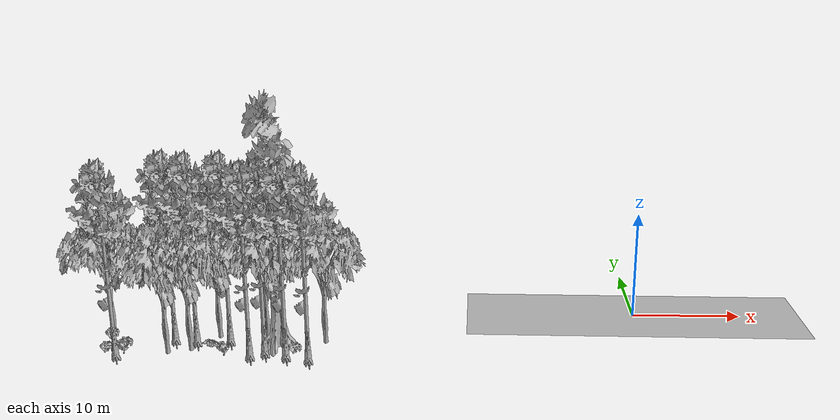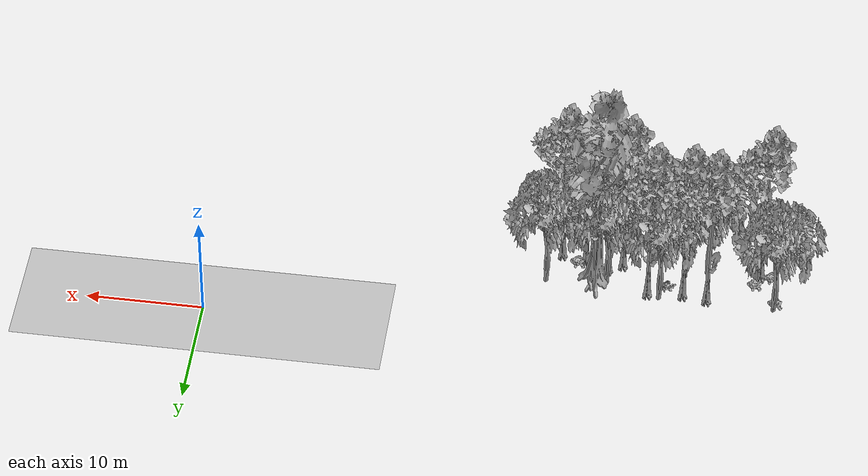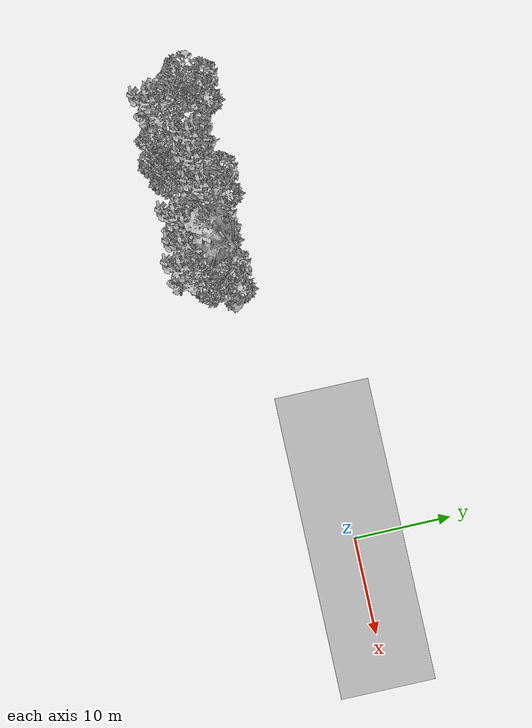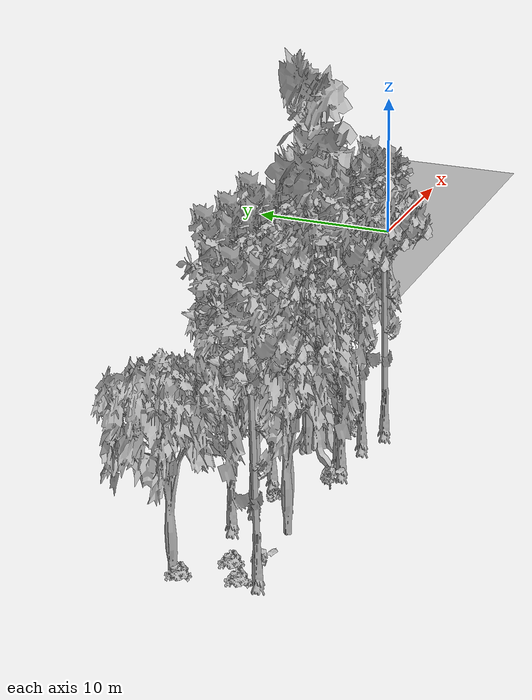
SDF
<sdf version="1.7">
 <world name="default">
  <model name="ground_plane">
   <static>1</static>
   <link name="link">
    <collision name="collision">
     <geometry><plane><normal>0 0 1</normal><size>100 100</size></plane></geometry>
     <surface><contact><ode><min_depth>0.01</min_depth><max_vel>0</max_vel></ode></contact></surface>
    </collision>
    <visual name="grass">
     <cast_shadows>0</cast_shadows>
     <geometry>
      <mesh>
       <scale>0.5814285714285714 0.18142857142857144 0.1</scale>
       <uri>file://grass_plane/meshes/grass_plane.dae</uri>
      </mesh>
     </geometry>
    </visual>
   </link>
  </model>
  <model name="Tree 26">
   <static>1</static>
   <pose>-41.89706193309854 -6.823377723736916 0 1.57079 -0 0</pose>
   <link name="link">
    <collision name="collision">
     <geometry><mesh><scale>3.5 5 3.5</scale><uri>model://tree_9/meshes/tree_9.obj</uri></mesh></geometry>
    </collision>
    <visual name="visual">
     <geometry><mesh><scale>3.5 5 3.5</scale><uri>model://tree_9/meshes/tree_9.obj</uri></mesh></geometry>
    </visual>
   </link>
  </model>
  <model name="Tree 45">
   <static>1</static>
   <pose>-36.886260193178025 -6.907361875016134 0 1.57079 -0 0</pose>
   <link name="link">
    <collision name="collision">
     <geometry><mesh><scale>3.5 5 3.5</scale><uri>model://tree_9/meshes/tree_9.obj</uri></mesh></geometry>
    </collision>
    <visual name="visual">
     <geometry><mesh><scale>3.5 5 3.5</scale><uri>model://tree_9/meshes/tree_9.obj</uri></mesh></geometry>
    </visual>
   </link>
  </model>
  <model name="Tree 127">
   <static>1</static>
   <pose>-39.93482188264696 -9.126162464528651 0 1.57079 -0 0</pose>
   <link name="link">
    <collision name="collision">
     <geometry><mesh><scale>3.5 5 3.5</scale><uri>model://tree_2/meshes/tree_2.obj</uri></mesh></geometry>
    </collision>
    <visual name="visual">
     <geometry><mesh><scale>3.5 5 3.5</scale><uri>model://tree_2/meshes/tree_2.obj</uri></mesh></geometry>
    </visual>
   </link>
  </model>
  <model name="Tree 169">
   <static>1</static>
   <pose>-39.84940294296381 -7.138028764143071 0 1.57079 -0 0</pose>
   <link name="link">
    <collision name="collision">
     <geometry><mesh><scale>3.5 5 3.5</scale><uri>model://tree_9/meshes/tree_9.obj</uri></mesh></geometry>
    </collision>
    <visual name="visual">
     <geometry><mesh><scale>3.5 5 3.5</scale><uri>model://tree_9/meshes/tree_9.obj</uri></mesh></geometry>
    </visual>
   </link>
  </model>
  <model name="Tree 186">
   <static>1</static>
   <pose>-28.325803620216675 -7.163123852173068 0 1.57079 -0 0</pose>
   <link name="link">
    <collision name="collision">
     <geometry><mesh><scale>3.5 5 3.5</scale><uri>model://tree_2/meshes/tree_2.obj</uri></mesh></geometry>
    </collision>
    <visual name="visual">
     <geometry><mesh><scale>3.5 5 3.5</scale><uri>model://tree_2/meshes/tree_2.obj</uri></mesh></geometry>
    </visual>
   </link>
  </model>
  <model name="Tree 203">
   <static>1</static>
   <pose>-29.29558881931643 -10.48394402863547 0 1.57079 -0 0</pose>
   <link name="link">
    <collision name="collision">
     <geometry><mesh><scale>3.5 5 3.5</scale><uri>model://tree_9/meshes/tree_9.obj</uri></mesh></geometry>
    </collision>
    <visual name="visual">
     <geometry><mesh><scale>3.5 5 3.5</scale><uri>model://tree_9/meshes/tree_9.obj</uri></mesh></geometry>
    </visual>
   </link>
  </model>
  <model name="Tree 209">
   <static>1</static>
   <pose>-47.67769337163075 -6.305912775215356 0 1.57079 -0 0</pose>
   <link name="link">
    <collision name="collision">
     <geometry><mesh><scale>3.5 5 3.5</scale><uri>model://tree_2/meshes/tree_2.obj</uri></mesh></geometry>
    </collision>
    <visual name="visual">
     <geometry><mesh><scale>3.5 5 3.5</scale><uri>model://tree_2/meshes/tree_2.obj</uri></mesh></geometry>
    </visual>
   </link>
  </model>
  <model name="Tree 220">
   <static>1</static>
   <pose>-41.79841662302142 -9.839269889362168 0 1.57079 -0 0</pose>
   <link name="link">
    <collision name="collision">
     <geometry><mesh><scale>3.5 5 3.5</scale><uri>model://tree_2/meshes/tree_2.obj</uri></mesh></geometry>
    </collision>
    <visual name="visual">
     <geometry><mesh><scale>3.5 5 3.5</scale><uri>model://tree_2/meshes/tree_2.obj</uri></mesh></geometry>
    </visual>
   </link>
  </model>
  <model name="Tree 222">
   <static>1</static>
   <pose>-33.313603136843476 -9.25092347423483 0 1.57079 -0 0</pose>
   <link name="link">
    <collision name="collision">
     <geometry><mesh><scale>3.5 5 3.5</scale><uri>model://tree_9/meshes/tree_9.obj</uri></mesh></geometry>
    </collision>
    <visual name="visual">
     <geometry><mesh><scale>3.5 5 3.5</scale><uri>model://tree_9/meshes/tree_9.obj</uri></mesh></geometry>
    </visual>
   </link>
  </model>
  <model name="Tree 244">
   <static>1</static>
   <pose>-37.9825010791709 -6.381575408263593 0 1.57079 -0 0</pose>
   <link name="link">
    <collision name="collision">
     <geometry><mesh><scale>3.5 5 3.5</scale><uri>model://tree_2/meshes/tree_2.obj</uri></mesh></geometry>
    </collision>
    <visual name="visual">
     <geometry><mesh><scale>3.5 5 3.5</scale><uri>model://tree_2/meshes/tree_2.obj</uri></mesh></geometry>
    </visual>
   </link>
  </model>
  <model name="Tree 302">
   <static>1</static>
   <pose>-46.233012539983115 -10.171025221220269 0 1.57079 -0 0</pose>
   <link name="link">
    <collision name="collision">
     <geometry><mesh><scale>3.5 5 3.5</scale><uri>model://tree_9/meshes/tree_9.obj</uri></mesh></geometry>
    </collision>
    <visual name="visual">
     <geometry><mesh><scale>3.5 5 3.5</scale><uri>model://tree_9/meshes/tree_9.obj</uri></mesh></geometry>
    </visual>
   </link>
  </model>
  <model name="Tree 329">
   <static>1</static>
   <pose>-34.51209079414367 -9.917421095389757 0 1.57079 -0 0</pose>
   <link name="link">
    <collision name="collision">
     <geometry><mesh><scale>3.5 5 3.5</scale><uri>model://tree_9/meshes/tree_9.obj</uri></mesh></geometry>
    </collision>
    <visual name="visual">
     <geometry><mesh><scale>3.5 5 3.5</scale><uri>model://tree_9/meshes/tree_9.obj</uri></mesh></geometry>
    </visual>
   </link>
  </model>
  <model name="Tree 373">
   <static>1</static>
   <pose>-33.428226697592294 -7.500273773282048 0 1.57079 -0 0</pose>
   <link name="link">
    <collision name="collision">
     <geometry><mesh><scale>3.5 5 3.5</scale><uri>model://tree_2/meshes/tree_2.obj</uri></mesh></geometry>
    </collision>
    <visual name="visual">
     <geometry><mesh><scale>3.5 5 3.5</scale><uri>model://tree_2/meshes/tree_2.obj</uri></mesh></geometry>
    </visual>
   </link>
  </model>
  <model name="Tree 416">
   <static>1</static>
   <pose>-31.352804954723105 -9.899646119169706 0 1.57079 -0 0</pose>
   <link name="link">
    <collision name="collision">
     <geometry><mesh><scale>3.5 5 3.5</scale><uri>model://tree_9/meshes/tree_9.obj</uri></mesh></geometry>
    </collision>
    <visual name="visual">
     <geometry><mesh><scale>3.5 5 3.5</scale><uri>model://tree_9/meshes/tree_9.obj</uri></mesh></geometry>
    </visual>
   </link>
  </model>
  <model name="Tree 445">
   <static>1</static>
   <pose>-32.38001468663424 -7.697240854984169 0 1.57079 -0 0</pose>
   <link name="link">
    <collision name="collision">
     <geometry><mesh><scale>3.5 5 3.5</scale><uri>model://tree_4/meshes/tree_4.obj</uri></mesh></geometry>
    </collision>
    <visual name="visual">
     <geometry><mesh><scale>3.5 5 3.5</scale><uri>model://tree_4/meshes/tree_4.obj</uri></mesh></geometry>
    </visual>
   </link>
  </model>
  <model name="Bush 29">
   <static>1</static>
   <pose>-45.74115275738098 -8.575116146890977 0 1.57079 -0 0</pose>
   <link name="link">
    <collision name="collision">
     <geometry><mesh><scale>2 2 2</scale><uri>model://bush_3/meshes/bush_3.obj</uri></mesh></geometry>
     <surface><contact><collide_without_contact>false</collide_without_contact></contact></surface>
    </collision>
    <visual name="visual">
     <geometry><mesh><scale>2 2 2</scale><uri>model://bush_3/meshes/bush_3.obj</uri></mesh></geometry>
    </visual>
   </link>
  </model>
  <model name="Bush 31">
   <static>1</static>
   <pose>-47.62847507355712 -6.630952315309653 0 1.57079 -0 0</pose>
   <link name="link">
    <collision name="collision">
     <geometry><mesh><scale>2 2 2</scale><uri>model://bush_3/meshes/bush_3.obj</uri></mesh></geometry>
     <surface><contact><collide_without_contact>false</collide_without_contact></contact></surface>
    </collision>
    <visual name="visual">
     <geometry><mesh><scale>2 2 2</scale><uri>model://bush_3/meshes/bush_3.obj</uri></mesh></geometry>
    </visual>
   </link>
  </model>
  <model name="Bush 64">
   <static>1</static>
   <pose>-30.636484583782345 -9.221638316776115 0 1.57079 -0 0</pose>
   <link name="link">
    <collision name="collision">
     <geometry><mesh><scale>2 2 2</scale><uri>model://bush_3/meshes/bush_3.obj</uri></mesh></geometry>
     <surface><contact><collide_without_contact>false</collide_without_contact></contact></surface>
    </collision>
    <visual name="visual">
     <geometry><mesh><scale>2 2 2</scale><uri>model://bush_3/meshes/bush_3.obj</uri></mesh></geometry>
    </visual>
   </link>
  </model>
  <model name="Bush 118">
   <static>1</static>
   <pose>-38.56842519579189 -7.844348571137259 0 1.57079 -0 0</pose>
   <link name="link">
    <collision name="collision">
     <geometry><mesh><scale>2 2 2</scale><uri>model://bush_2/meshes/bush_2.obj</uri></mesh></geometry>
     <surface><contact><collide_without_contact>false</collide_without_contact></contact></surface>
    </collision>
    <visual name="visual">
     <geometry><mesh><scale>2 2 2</scale><uri>model://bush_2/meshes/bush_2.obj</uri></mesh></geometry>
    </visual>
   </link>
  </model>
  <model name="Bush 123">
   <static>1</static>
   <pose>-47.10593196555304 -9.54329313820566 0 1.57079 -0 0</pose>
   <link name="link">
    <collision name="collision">
     <geometry><mesh><scale>2 2 2</scale><uri>model://bush_3/meshes/bush_3.obj</uri></mesh></geometry>
     <surface><contact><collide_without_contact>false</collide_without_contact></contact></surface>
    </collision>
    <visual name="visual">
     <geometry><mesh><scale>2 2 2</scale><uri>model://bush_3/meshes/bush_3.obj</uri></mesh></geometry>
    </visual>
   </link>
  </model>
  <model name="Bush 246">
   <static>1</static>
   <pose>-36.72002829175203 -10.139147762744942 0 1.57079 -0 0</pose>
   <link name="link">
    <collision name="collision">
     <geometry><mesh><scale>2 2 2</scale><uri>model://bush_0/meshes/bush_0.obj</uri></mesh></geometry>
     <surface><contact><collide_without_contact>false</collide_without_contact></contact></surface>
    </collision>
    <visual name="visual">
     <geometry><mesh><scale>2 2 2</scale><uri>model://bush_0/meshes/bush_0.obj</uri></mesh></geometry>
    </visual>
   </link>
  </model>
  <model name="Bush 335">
   <static>1</static>
   <pose>-45.527771376673705 -10.072669234014432 0 1.57079 -0 0</pose>
   <link name="link">
    <collision name="collision">
     <geometry><mesh><scale>2 2 2</scale><uri>model://bush_0/meshes/bush_0.obj</uri></mesh></geometry>
     <surface><contact><collide_without_contact>false</collide_without_contact></contact></surface>
    </collision>
    <visual name="visual">
     <geometry><mesh><scale>2 2 2</scale><uri>model://bush_0/meshes/bush_0.obj</uri></mesh></geometry>
    </visual>
   </link>
  </model>
 </world>
</sdf>
